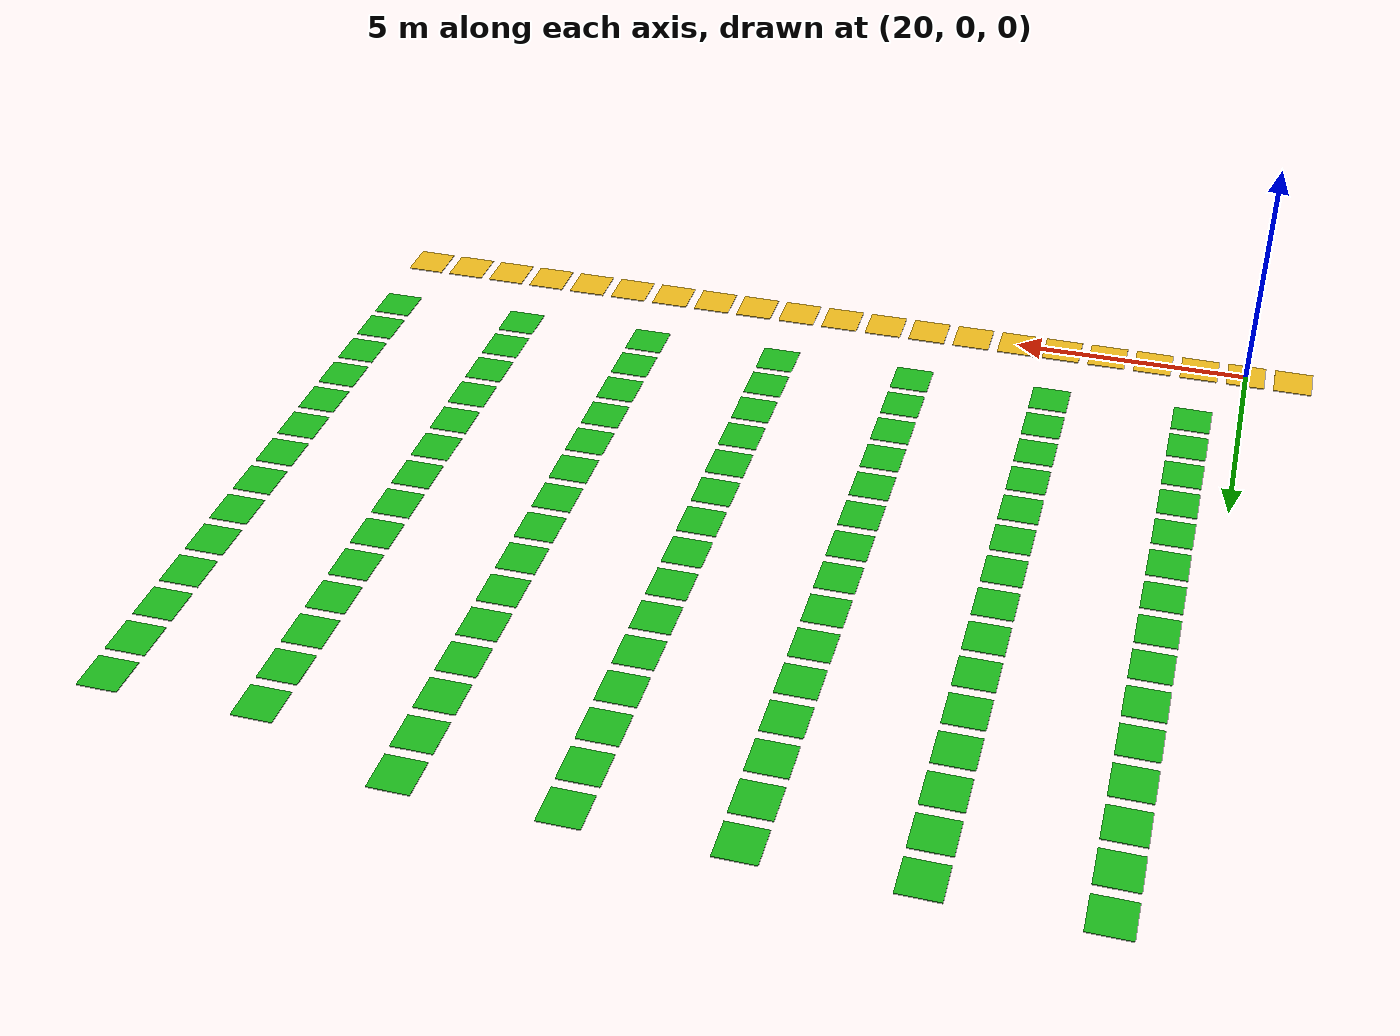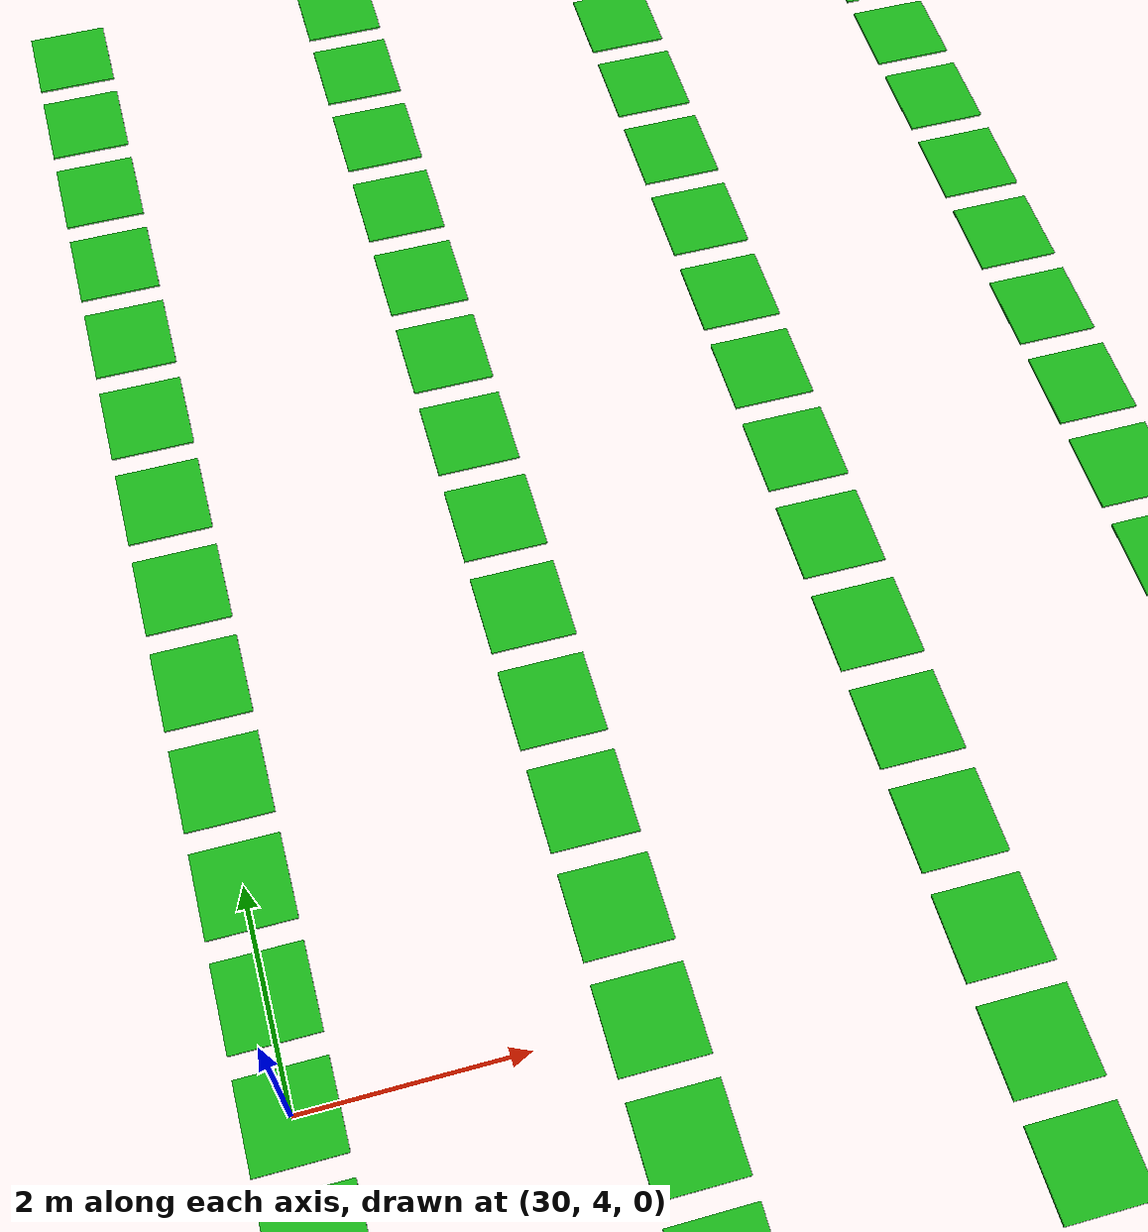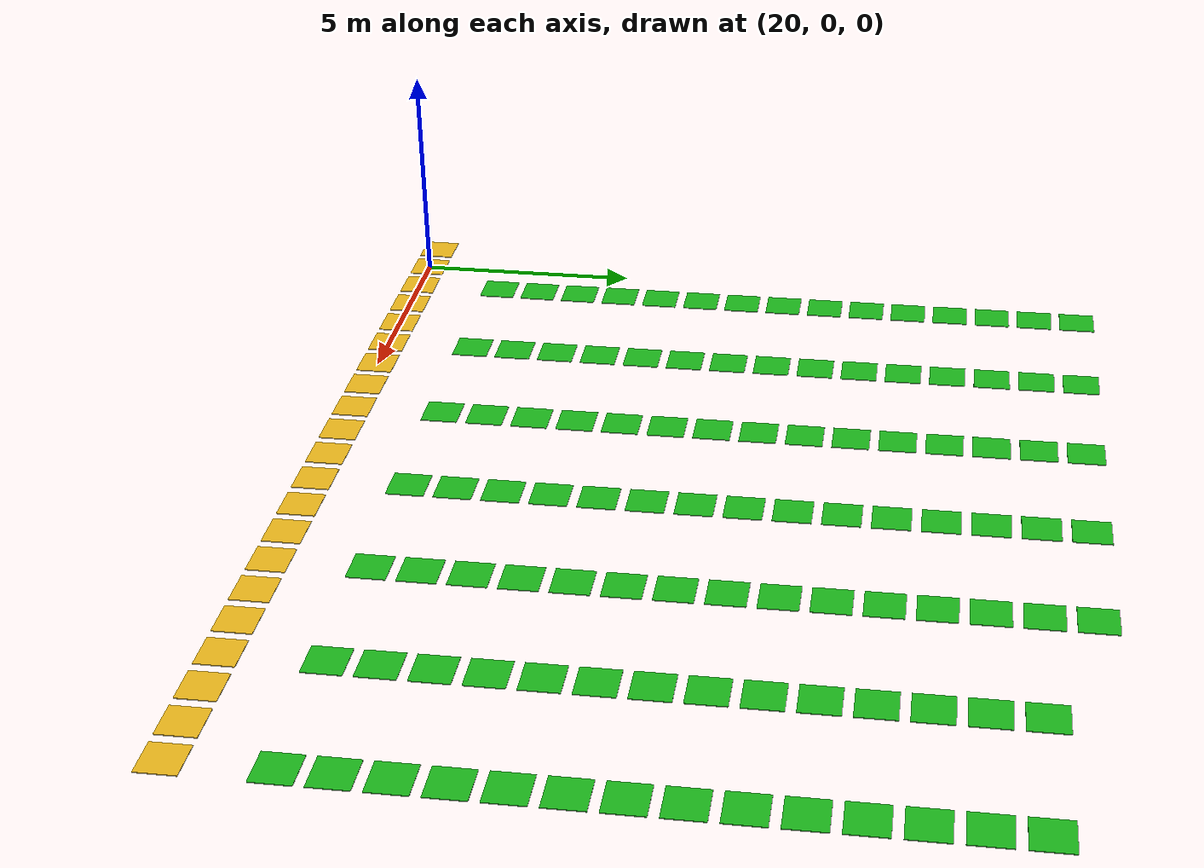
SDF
<sdf version="1.10">
 <world name="my_map">
  <model name="shelf_1882">
   <static>true</static>
   <pose>21.0
        16.0
        0.02
        0 0 0</pose>
   <link name="link">
    <visual name="visual">
     <geometry><box><size>0.8
                0.8
                0.02</size></box></geometry>
     <material><ambient>0.10 0.70 0.10 1</ambient><diffuse>0.10 0.70 0.10 1</diffuse></material>
    </visual>
   </link>
  </model>
  <model name="shelf_1883">
   <static>true</static>
   <pose>24.0
        16.0
        0.02
        0 0 0</pose>
   <link name="link">
    <visual name="visual">
     <geometry><box><size>0.8
                0.8
                0.02</size></box></geometry>
     <material><ambient>0.10 0.70 0.10 1</ambient><diffuse>0.10 0.70 0.10 1</diffuse></material>
    </visual>
   </link>
  </model>
  <model name="shelf_1884">
   <static>true</static>
   <pose>27.0
        16.0
        0.02
        0 0 0</pose>
   <link name="link">
    <visual name="visual">
     <geometry><box><size>0.8
                0.8
                0.02</size></box></geometry>
     <material><ambient>0.10 0.70 0.10 1</ambient><diffuse>0.10 0.70 0.10 1</diffuse></material>
    </visual>
   </link>
  </model>
  <model name="shelf_1885">
   <static>true</static>
   <pose>30.0
        16.0
        0.02
        0 0 0</pose>
   <link name="link">
    <visual name="visual">
     <geometry><box><size>0.8
                0.8
                0.02</size></box></geometry>
     <material><ambient>0.10 0.70 0.10 1</ambient><diffuse>0.10 0.70 0.10 1</diffuse></material>
    </visual>
   </link>
  </model>
  <model name="shelf_1886">
   <static>true</static>
   <pose>33.0
        16.0
        0.02
        0 0 0</pose>
   <link name="link">
    <visual name="visual">
     <geometry><box><size>0.8
                0.8
                0.02</size></box></geometry>
     <material><ambient>0.10 0.70 0.10 1</ambient><diffuse>0.10 0.70 0.10 1</diffuse></material>
    </visual>
   </link>
  </model>
  <model name="shelf_1907">
   <static>true</static>
   <pose>21.0
        15.0
        0.02
        0 0 0</pose>
   <link name="link">
    <visual name="visual">
     <geometry><box><size>0.8
                0.8
                0.02</size></box></geometry>
     <material><ambient>0.10 0.70 0.10 1</ambient><diffuse>0.10 0.70 0.10 1</diffuse></material>
    </visual>
   </link>
  </model>
  <model name="shelf_1908">
   <static>true</static>
   <pose>24.0
        15.0
        0.02
        0 0 0</pose>
   <link name="link">
    <visual name="visual">
     <geometry><box><size>0.8
                0.8
                0.02</size></box></geometry>
     <material><ambient>0.10 0.70 0.10 1</ambient><diffuse>0.10 0.70 0.10 1</diffuse></material>
    </visual>
   </link>
  </model>
  <model name="shelf_1909">
   <static>true</static>
   <pose>27.0
        15.0
        0.02
        0 0 0</pose>
   <link name="link">
    <visual name="visual">
     <geometry><box><size>0.8
                0.8
                0.02</size></box></geometry>
     <material><ambient>0.10 0.70 0.10 1</ambient><diffuse>0.10 0.70 0.10 1</diffuse></material>
    </visual>
   </link>
  </model>
  <model name="shelf_1910">
   <static>true</static>
   <pose>30.0
        15.0
        0.02
        0 0 0</pose>
   <link name="link">
    <visual name="visual">
     <geometry><box><size>0.8
                0.8
                0.02</size></box></geometry>
     <material><ambient>0.10 0.70 0.10 1</ambient><diffuse>0.10 0.70 0.10 1</diffuse></material>
    </visual>
   </link>
  </model>
  <model name="shelf_1911">
   <static>true</static>
   <pose>33.0
        15.0
        0.02
        0 0 0</pose>
   <link name="link">
    <visual name="visual">
     <geometry><box><size>0.8
                0.8
                0.02</size></box></geometry>
     <material><ambient>0.10 0.70 0.10 1</ambient><diffuse>0.10 0.70 0.10 1</diffuse></material>
    </visual>
   </link>
  </model>
  <model name="shelf_1912">
   <static>true</static>
   <pose>36.0
        15.0
        0.02
        0 0 0</pose>
   <link name="link">
    <visual name="visual">
     <geometry><box><size>0.8
                0.8
                0.02</size></box></geometry>
     <material><ambient>0.10 0.70 0.10 1</ambient><diffuse>0.10 0.70 0.10 1</diffuse></material>
    </visual>
   </link>
  </model>
  <model name="shelf_1913">
   <static>true</static>
   <pose>39.0
        15.0
        0.02
        0 0 0</pose>
   <link name="link">
    <visual name="visual">
     <geometry><box><size>0.8
                0.8
                0.02</size></box></geometry>
     <material><ambient>0.10 0.70 0.10 1</ambient><diffuse>0.10 0.70 0.10 1</diffuse></material>
    </visual>
   </link>
  </model>
  <model name="shelf_1932">
   <static>true</static>
   <pose>21.0
        14.0
        0.02
        0 0 0</pose>
   <link name="link">
    <visual name="visual">
     <geometry><box><size>0.8
                0.8
                0.02</size></box></geometry>
     <material><ambient>0.10 0.70 0.10 1</ambient><diffuse>0.10 0.70 0.10 1</diffuse></material>
    </visual>
   </link>
  </model>
  <model name="shelf_1933">
   <static>true</static>
   <pose>24.0
        14.0
        0.02
        0 0 0</pose>
   <link name="link">
    <visual name="visual">
     <geometry><box><size>0.8
                0.8
                0.02</size></box></geometry>
     <material><ambient>0.10 0.70 0.10 1</ambient><diffuse>0.10 0.70 0.10 1</diffuse></material>
    </visual>
   </link>
  </model>
  <model name="shelf_1934">
   <static>true</static>
   <pose>27.0
        14.0
        0.02
        0 0 0</pose>
   <link name="link">
    <visual name="visual">
     <geometry><box><size>0.8
                0.8
                0.02</size></box></geometry>
     <material><ambient>0.10 0.70 0.10 1</ambient><diffuse>0.10 0.70 0.10 1</diffuse></material>
    </visual>
   </link>
  </model>
  <model name="shelf_1935">
   <static>true</static>
   <pose>30.0
        14.0
        0.02
        0 0 0</pose>
   <link name="link">
    <visual name="visual">
     <geometry><box><size>0.8
                0.8
                0.02</size></box></geometry>
     <material><ambient>0.10 0.70 0.10 1</ambient><diffuse>0.10 0.70 0.10 1</diffuse></material>
    </visual>
   </link>
  </model>
  <model name="shelf_1936">
   <static>true</static>
   <pose>33.0
        14.0
        0.02
        0 0 0</pose>
   <link name="link">
    <visual name="visual">
     <geometry><box><size>0.8
                0.8
                0.02</size></box></geometry>
     <material><ambient>0.10 0.70 0.10 1</ambient><diffuse>0.10 0.70 0.10 1</diffuse></material>
    </visual>
   </link>
  </model>
  <model name="shelf_1937">
   <static>true</static>
   <pose>36.0
        14.0
        0.02
        0 0 0</pose>
   <link name="link">
    <visual name="visual">
     <geometry><box><size>0.8
                0.8
                0.02</size></box></geometry>
     <material><ambient>0.10 0.70 0.10 1</ambient><diffuse>0.10 0.70 0.10 1</diffuse></material>
    </visual>
   </link>
  </model>
  <model name="shelf_1938">
   <static>true</static>
   <pose>39.0
        14.0
        0.02
        0 0 0</pose>
   <link name="link">
    <visual name="visual">
     <geometry><box><size>0.8
                0.8
                0.02</size></box></geometry>
     <material><ambient>0.10 0.70 0.10 1</ambient><diffuse>0.10 0.70 0.10 1</diffuse></material>
    </visual>
   </link>
  </model>
  <model name="shelf_1957">
   <static>true</static>
   <pose>21.0
        13.0
        0.02
        0 0 0</pose>
   <link name="link">
    <visual name="visual">
     <geometry><box><size>0.8
                0.8
                0.02</size></box></geometry>
     <material><ambient>0.10 0.70 0.10 1</ambient><diffuse>0.10 0.70 0.10 1</diffuse></material>
    </visual>
   </link>
  </model>
  <model name="shelf_1958">
   <static>true</static>
   <pose>24.0
        13.0
        0.02
        0 0 0</pose>
   <link name="link">
    <visual name="visual">
     <geometry><box><size>0.8
                0.8
                0.02</size></box></geometry>
     <material><ambient>0.10 0.70 0.10 1</ambient><diffuse>0.10 0.70 0.10 1</diffuse></material>
    </visual>
   </link>
  </model>
  <model name="shelf_1959">
   <static>true</static>
   <pose>27.0
        13.0
        0.02
        0 0 0</pose>
   <link name="link">
    <visual name="visual">
     <geometry><box><size>0.8
                0.8
                0.02</size></box></geometry>
     <material><ambient>0.10 0.70 0.10 1</ambient><diffuse>0.10 0.70 0.10 1</diffuse></material>
    </visual>
   </link>
  </model>
  <model name="shelf_1960">
   <static>true</static>
   <pose>30.0
        13.0
        0.02
        0 0 0</pose>
   <link name="link">
    <visual name="visual">
     <geometry><box><size>0.8
                0.8
                0.02</size></box></geometry>
     <material><ambient>0.10 0.70 0.10 1</ambient><diffuse>0.10 0.70 0.10 1</diffuse></material>
    </visual>
   </link>
  </model>
  <model name="shelf_1961">
   <static>true</static>
   <pose>33.0
        13.0
        0.02
        0 0 0</pose>
   <link name="link">
    <visual name="visual">
     <geometry><box><size>0.8
                0.8
                0.02</size></box></geometry>
     <material><ambient>0.10 0.70 0.10 1</ambient><diffuse>0.10 0.70 0.10 1</diffuse></material>
    </visual>
   </link>
  </model>
  <model name="shelf_1962">
   <static>true</static>
   <pose>36.0
        13.0
        0.02
        0 0 0</pose>
   <link name="link">
    <visual name="visual">
     <geometry><box><size>0.8
                0.8
                0.02</size></box></geometry>
     <material><ambient>0.10 0.70 0.10 1</ambient><diffuse>0.10 0.70 0.10 1</diffuse></material>
    </visual>
   </link>
  </model>
  <model name="shelf_1963">
   <static>true</static>
   <pose>39.0
        13.0
        0.02
        0 0 0</pose>
   <link name="link">
    <visual name="visual">
     <geometry><box><size>0.8
                0.8
                0.02</size></box></geometry>
     <material><ambient>0.10 0.70 0.10 1</ambient><diffuse>0.10 0.70 0.10 1</diffuse></material>
    </visual>
   </link>
  </model>
  <model name="shelf_1982">
   <static>true</static>
   <pose>21.0
        12.0
        0.02
        0 0 0</pose>
   <link name="link">
    <visual name="visual">
     <geometry><box><size>0.8
                0.8
                0.02</size></box></geometry>
     <material><ambient>0.10 0.70 0.10 1</ambient><diffuse>0.10 0.70 0.10 1</diffuse></material>
    </visual>
   </link>
  </model>
  <model name="shelf_1983">
   <static>true</static>
   <pose>24.0
        12.0
        0.02
        0 0 0</pose>
   <link name="link">
    <visual name="visual">
     <geometry><box><size>0.8
                0.8
                0.02</size></box></geometry>
     <material><ambient>0.10 0.70 0.10 1</ambient><diffuse>0.10 0.70 0.10 1</diffuse></material>
    </visual>
   </link>
  </model>
  <model name="shelf_1984">
   <static>true</static>
   <pose>27.0
        12.0
        0.02
        0 0 0</pose>
   <link name="link">
    <visual name="visual">
     <geometry><box><size>0.8
                0.8
                0.02</size></box></geometry>
     <material><ambient>0.10 0.70 0.10 1</ambient><diffuse>0.10 0.70 0.10 1</diffuse></material>
    </visual>
   </link>
  </model>
  <model name="shelf_1985">
   <static>true</static>
   <pose>30.0
        12.0
        0.02
        0 0 0</pose>
   <link name="link">
    <visual name="visual">
     <geometry><box><size>0.8
                0.8
                0.02</size></box></geometry>
     <material><ambient>0.10 0.70 0.10 1</ambient><diffuse>0.10 0.70 0.10 1</diffuse></material>
    </visual>
   </link>
  </model>
  <model name="shelf_1986">
   <static>true</static>
   <pose>33.0
        12.0
        0.02
        0 0 0</pose>
   <link name="link">
    <visual name="visual">
     <geometry><box><size>0.8
                0.8
                0.02</size></box></geometry>
     <material><ambient>0.10 0.70 0.10 1</ambient><diffuse>0.10 0.70 0.10 1</diffuse></material>
    </visual>
   </link>
  </model>
  <model name="shelf_1987">
   <static>true</static>
   <pose>36.0
        12.0
        0.02
        0 0 0</pose>
   <link name="link">
    <visual name="visual">
     <geometry><box><size>0.8
                0.8
                0.02</size></box></geometry>
     <material><ambient>0.10 0.70 0.10 1</ambient><diffuse>0.10 0.70 0.10 1</diffuse></material>
    </visual>
   </link>
  </model>
  <model name="shelf_1988">
   <static>true</static>
   <pose>39.0
        12.0
        0.02
        0 0 0</pose>
   <link name="link">
    <visual name="visual">
     <geometry><box><size>0.8
                0.8
                0.02</size></box></geometry>
     <material><ambient>0.10 0.70 0.10 1</ambient><diffuse>0.10 0.70 0.10 1</diffuse></material>
    </visual>
   </link>
  </model>
  <model name="shelf_2007">
   <static>true</static>
   <pose>21.0
        11.0
        0.02
        0 0 0</pose>
   <link name="link">
    <visual name="visual">
     <geometry><box><size>0.8
                0.8
                0.02</size></box></geometry>
     <material><ambient>0.10 0.70 0.10 1</ambient><diffuse>0.10 0.70 0.10 1</diffuse></material>
    </visual>
   </link>
  </model>
  <model name="shelf_2008">
   <static>true</static>
   <pose>24.0
        11.0
        0.02
        0 0 0</pose>
   <link name="link">
    <visual name="visual">
     <geometry><box><size>0.8
                0.8
                0.02</size></box></geometry>
     <material><ambient>0.10 0.70 0.10 1</ambient><diffuse>0.10 0.70 0.10 1</diffuse></material>
    </visual>
   </link>
  </model>
  <model name="shelf_2009">
   <static>true</static>
   <pose>27.0
        11.0
        0.02
        0 0 0</pose>
   <link name="link">
    <visual name="visual">
     <geometry><box><size>0.8
                0.8
                0.02</size></box></geometry>
     <material><ambient>0.10 0.70 0.10 1</ambient><diffuse>0.10 0.70 0.10 1</diffuse></material>
    </visual>
   </link>
  </model>
  <model name="shelf_2010">
   <static>true</static>
   <pose>30.0
        11.0
        0.02
        0 0 0</pose>
   <link name="link">
    <visual name="visual">
     <geometry><box><size>0.8
                0.8
                0.02</size></box></geometry>
     <material><ambient>0.10 0.70 0.10 1</ambient><diffuse>0.10 0.70 0.10 1</diffuse></material>
    </visual>
   </link>
  </model>
  <model name="shelf_2011">
   <static>true</static>
   <pose>33.0
        11.0
        0.02
        0 0 0</pose>
   <link name="link">
    <visual name="visual">
     <geometry><box><size>0.8
                0.8
                0.02</size></box></geometry>
     <material><ambient>0.10 0.70 0.10 1</ambient><diffuse>0.10 0.70 0.10 1</diffuse></material>
    </visual>
   </link>
  </model>
  <model name="shelf_2012">
   <static>true</static>
   <pose>36.0
        11.0
        0.02
        0 0 0</pose>
   <link name="link">
    <visual name="visual">
     <geometry><box><size>0.8
                0.8
                0.02</size></box></geometry>
     <material><ambient>0.10 0.70 0.10 1</ambient><diffuse>0.10 0.70 0.10 1</diffuse></material>
    </visual>
   </link>
  </model>
  <model name="shelf_2013">
   <static>true</static>
   <pose>39.0
        11.0
        0.02
        0 0 0</pose>
   <link name="link">
    <visual name="visual">
     <geometry><box><size>0.8
                0.8
                0.02</size></box></geometry>
     <material><ambient>0.10 0.70 0.10 1</ambient><diffuse>0.10 0.70 0.10 1</diffuse></material>
    </visual>
   </link>
  </model>
  <model name="shelf_2032">
   <static>true</static>
   <pose>21.0
        10.0
        0.02
        0 0 0</pose>
   <link name="link">
    <visual name="visual">
     <geometry><box><size>0.8
                0.8
                0.02</size></box></geometry>
     <material><ambient>0.10 0.70 0.10 1</ambient><diffuse>0.10 0.70 0.10 1</diffuse></material>
    </visual>
   </link>
  </model>
  <model name="shelf_2033">
   <static>true</static>
   <pose>24.0
        10.0
        0.02
        0 0 0</pose>
   <link name="link">
    <visual name="visual">
     <geometry><box><size>0.8
                0.8
                0.02</size></box></geometry>
     <material><ambient>0.10 0.70 0.10 1</ambient><diffuse>0.10 0.70 0.10 1</diffuse></material>
    </visual>
   </link>
  </model>
  <model name="shelf_2034">
   <static>true</static>
   <pose>27.0
        10.0
        0.02
        0 0 0</pose>
   <link name="link">
    <visual name="visual">
     <geometry><box><size>0.8
                0.8
                0.02</size></box></geometry>
     <material><ambient>0.10 0.70 0.10 1</ambient><diffuse>0.10 0.70 0.10 1</diffuse></material>
    </visual>
   </link>
  </model>
  <model name="shelf_2035">
   <static>true</static>
   <pose>30.0
        10.0
        0.02
        0 0 0</pose>
   <link name="link">
    <visual name="visual">
     <geometry><box><size>0.8
                0.8
                0.02</size></box></geometry>
     <material><ambient>0.10 0.70 0.10 1</ambient><diffuse>0.10 0.70 0.10 1</diffuse></material>
    </visual>
   </link>
  </model>
  <model name="shelf_2036">
   <static>true</static>
   <pose>33.0
        10.0
        0.02
        0 0 0</pose>
   <link name="link">
    <visual name="visual">
     <geometry><box><size>0.8
                0.8
                0.02</size></box></geometry>
     <material><ambient>0.10 0.70 0.10 1</ambient><diffuse>0.10 0.70 0.10 1</diffuse></material>
    </visual>
   </link>
  </model>
  <model name="shelf_2037">
   <static>true</static>
   <pose>36.0
        10.0
        0.02
        0 0 0</pose>
   <link name="link">
    <visual name="visual">
     <geometry><box><size>0.8
                0.8
                0.02</size></box></geometry>
     <material><ambient>0.10 0.70 0.10 1</ambient><diffuse>0.10 0.70 0.10 1</diffuse></material>
    </visual>
   </link>
  </model>
  <model name="shelf_2038">
   <static>true</static>
   <pose>39.0
        10.0
        0.02
        0 0 0</pose>
   <link name="link">
    <visual name="visual">
     <geometry><box><size>0.8
                0.8
                0.02</size></box></geometry>
     <material><ambient>0.10 0.70 0.10 1</ambient><diffuse>0.10 0.70 0.10 1</diffuse></material>
    </visual>
   </link>
  </model>
  <model name="shelf_2057">
   <static>true</static>
   <pose>21.0
        9.0
        0.02
        0 0 0</pose>
   <link name="link">
    <visual name="visual">
     <geometry><box><size>0.8
                0.8
                0.02</size></box></geometry>
     <material><ambient>0.10 0.70 0.10 1</ambient><diffuse>0.10 0.70 0.10 1</diffuse></material>
    </visual>
   </link>
  </model>
  <model name="shelf_2058">
   <static>true</static>
   <pose>24.0
        9.0
        0.02
        0 0 0</pose>
   <link name="link">
    <visual name="visual">
     <geometry><box><size>0.8
                0.8
                0.02</size></box></geometry>
     <material><ambient>0.10 0.70 0.10 1</ambient><diffuse>0.10 0.70 0.10 1</diffuse></material>
    </visual>
   </link>
  </model>
  <model name="shelf_2059">
   <static>true</static>
   <pose>27.0
        9.0
        0.02
        0 0 0</pose>
   <link name="link">
    <visual name="visual">
     <geometry><box><size>0.8
                0.8
                0.02</size></box></geometry>
     <material><ambient>0.10 0.70 0.10 1</ambient><diffuse>0.10 0.70 0.10 1</diffuse></material>
    </visual>
   </link>
  </model>
  <model name="shelf_2060">
   <static>true</static>
   <pose>30.0
        9.0
        0.02
        0 0 0</pose>
   <link name="link">
    <visual name="visual">
     <geometry><box><size>0.8
                0.8
                0.02</size></box></geometry>
     <material><ambient>0.10 0.70 0.10 1</ambient><diffuse>0.10 0.70 0.10 1</diffuse></material>
    </visual>
   </link>
  </model>
  <model name="shelf_2061">
   <static>true</static>
   <pose>33.0
        9.0
        0.02
        0 0 0</pose>
   <link name="link">
    <visual name="visual">
     <geometry><box><size>0.8
                0.8
                0.02</size></box></geometry>
     <material><ambient>0.10 0.70 0.10 1</ambient><diffuse>0.10 0.70 0.10 1</diffuse></material>
    </visual>
   </link>
  </model>
  <model name="shelf_2062">
   <static>true</static>
   <pose>36.0
        9.0
        0.02
        0 0 0</pose>
   <link name="link">
    <visual name="visual">
     <geometry><box><size>0.8
                0.8
                0.02</size></box></geometry>
     <material><ambient>0.10 0.70 0.10 1</ambient><diffuse>0.10 0.70 0.10 1</diffuse></material>
    </visual>
   </link>
  </model>
  <model name="shelf_2063">
   <static>true</static>
   <pose>39.0
        9.0
        0.02
        0 0 0</pose>
   <link name="link">
    <visual name="visual">
     <geometry><box><size>0.8
                0.8
                0.02</size></box></geometry>
     <material><ambient>0.10 0.70 0.10 1</ambient><diffuse>0.10 0.70 0.10 1</diffuse></material>
    </visual>
   </link>
  </model>
  <model name="shelf_2082">
   <static>true</static>
   <pose>21.0
        8.0
        0.02
        0 0 0</pose>
   <link name="link">
    <visual name="visual">
     <geometry><box><size>0.8
                0.8
                0.02</size></box></geometry>
     <material><ambient>0.10 0.70 0.10 1</ambient><diffuse>0.10 0.70 0.10 1</diffuse></material>
    </visual>
   </link>
  </model>
  <model name="shelf_2083">
   <static>true</static>
   <pose>24.0
        8.0
        0.02
        0 0 0</pose>
   <link name="link">
    <visual name="visual">
     <geometry><box><size>0.8
                0.8
                0.02</size></box></geometry>
     <material><ambient>0.10 0.70 0.10 1</ambient><diffuse>0.10 0.70 0.10 1</diffuse></material>
    </visual>
   </link>
  </model>
  <model name="shelf_2084">
   <static>true</static>
   <pose>27.0
        8.0
        0.02
        0 0 0</pose>
   <link name="link">
    <visual name="visual">
     <geometry><box><size>0.8
                0.8
                0.02</size></box></geometry>
     <material><ambient>0.10 0.70 0.10 1</ambient><diffuse>0.10 0.70 0.10 1</diffuse></material>
    </visual>
   </link>
  </model>
  <model name="shelf_2085">
   <static>true</static>
   <pose>30.0
        8.0
        0.02
        0 0 0</pose>
   <link name="link">
    <visual name="visual">
     <geometry><box><size>0.8
                0.8
                0.02</size></box></geometry>
     <material><ambient>0.10 0.70 0.10 1</ambient><diffuse>0.10 0.70 0.10 1</diffuse></material>
    </visual>
   </link>
  </model>
  <model name="shelf_2086">
   <static>true</static>
   <pose>33.0
        8.0
        0.02
        0 0 0</pose>
   <link name="link">
    <visual name="visual">
     <geometry><box><size>0.8
                0.8
                0.02</size></box></geometry>
     <material><ambient>0.10 0.70 0.10 1</ambient><diffuse>0.10 0.70 0.10 1</diffuse></material>
    </visual>
   </link>
  </model>
  <model name="shelf_2087">
   <static>true</static>
   <pose>36.0
        8.0
        0.02
        0 0 0</pose>
   <link name="link">
    <visual name="visual">
     <geometry><box><size>0.8
                0.8
                0.02</size></box></geometry>
     <material><ambient>0.10 0.70 0.10 1</ambient><diffuse>0.10 0.70 0.10 1</diffuse></material>
    </visual>
   </link>
  </model>
  <model name="shelf_2088">
   <static>true</static>
   <pose>39.0
        8.0
        0.02
        0 0 0</pose>
   <link name="link">
    <visual name="visual">
     <geometry><box><size>0.8
                0.8
                0.02</size></box></geometry>
     <material><ambient>0.10 0.70 0.10 1</ambient><diffuse>0.10 0.70 0.10 1</diffuse></material>
    </visual>
   </link>
  </model>
  <model name="shelf_2107">
   <static>true</static>
   <pose>21.0
        7.0
        0.02
        0 0 0</pose>
   <link name="link">
    <visual name="visual">
     <geometry><box><size>0.8
                0.8
                0.02</size></box></geometry>
     <material><ambient>0.10 0.70 0.10 1</ambient><diffuse>0.10 0.70 0.10 1</diffuse></material>
    </visual>
   </link>
  </model>
  <model name="shelf_2108">
   <static>true</static>
   <pose>24.0
        7.0
        0.02
        0 0 0</pose>
   <link name="link">
    <visual name="visual">
     <geometry><box><size>0.8
                0.8
                0.02</size></box></geometry>
     <material><ambient>0.10 0.70 0.10 1</ambient><diffuse>0.10 0.70 0.10 1</diffuse></material>
    </visual>
   </link>
  </model>
  <model name="shelf_2109">
   <static>true</static>
   <pose>27.0
        7.0
        0.02
        0 0 0</pose>
   <link name="link">
    <visual name="visual">
     <geometry><box><size>0.8
                0.8
                0.02</size></box></geometry>
     <material><ambient>0.10 0.70 0.10 1</ambient><diffuse>0.10 0.70 0.10 1</diffuse></material>
    </visual>
   </link>
  </model>
  <model name="shelf_2110">
   <static>true</static>
   <pose>30.0
        7.0
        0.02
        0 0 0</pose>
   <link name="link">
    <visual name="visual">
     <geometry><box><size>0.8
                0.8
                0.02</size></box></geometry>
     <material><ambient>0.10 0.70 0.10 1</ambient><diffuse>0.10 0.70 0.10 1</diffuse></material>
    </visual>
   </link>
  </model>
  <model name="shelf_2111">
   <static>true</static>
   <pose>33.0
        7.0
        0.02
        0 0 0</pose>
   <link name="link">
    <visual name="visual">
     <geometry><box><size>0.8
                0.8
                0.02</size></box></geometry>
     <material><ambient>0.10 0.70 0.10 1</ambient><diffuse>0.10 0.70 0.10 1</diffuse></material>
    </visual>
   </link>
  </model>
  <model name="shelf_2112">
   <static>true</static>
   <pose>36.0
        7.0
        0.02
        0 0 0</pose>
   <link name="link">
    <visual name="visual">
     <geometry><box><size>0.8
                0.8
                0.02</size></box></geometry>
     <material><ambient>0.10 0.70 0.10 1</ambient><diffuse>0.10 0.70 0.10 1</diffuse></material>
    </visual>
   </link>
  </model>
  <model name="shelf_2113">
   <static>true</static>
   <pose>39.0
        7.0
        0.02
        0 0 0</pose>
   <link name="link">
    <visual name="visual">
     <geometry><box><size>0.8
                0.8
                0.02</size></box></geometry>
     <material><ambient>0.10 0.70 0.10 1</ambient><diffuse>0.10 0.70 0.10 1</diffuse></material>
    </visual>
   </link>
  </model>
  <model name="shelf_2132">
   <static>true</static>
   <pose>21.0
        6.0
        0.02
        0 0 0</pose>
   <link name="link">
    <visual name="visual">
     <geometry><box><size>0.8
                0.8
                0.02</size></box></geometry>
     <material><ambient>0.10 0.70 0.10 1</ambient><diffuse>0.10 0.70 0.10 1</diffuse></material>
    </visual>
   </link>
  </model>
  <model name="shelf_2133">
   <static>true</static>
   <pose>24.0
        6.0
        0.02
        0 0 0</pose>
   <link name="link">
    <visual name="visual">
     <geometry><box><size>0.8
                0.8
                0.02</size></box></geometry>
     <material><ambient>0.10 0.70 0.10 1</ambient><diffuse>0.10 0.70 0.10 1</diffuse></material>
    </visual>
   </link>
  </model>
  <model name="shelf_2134">
   <static>true</static>
   <pose>27.0
        6.0
        0.02
        0 0 0</pose>
   <link name="link">
    <visual name="visual">
     <geometry><box><size>0.8
                0.8
                0.02</size></box></geometry>
     <material><ambient>0.10 0.70 0.10 1</ambient><diffuse>0.10 0.70 0.10 1</diffuse></material>
    </visual>
   </link>
  </model>
  <model name="shelf_2135">
   <static>true</static>
   <pose>30.0
        6.0
        0.02
        0 0 0</pose>
   <link name="link">
    <visual name="visual">
     <geometry><box><size>0.8
                0.8
                0.02</size></box></geometry>
     <material><ambient>0.10 0.70 0.10 1</ambient><diffuse>0.10 0.70 0.10 1</diffuse></material>
    </visual>
   </link>
  </model>
  <model name="shelf_2136">
   <static>true</static>
   <pose>33.0
        6.0
        0.02
        0 0 0</pose>
   <link name="link">
    <visual name="visual">
     <geometry><box><size>0.8
                0.8
                0.02</size></box></geometry>
     <material><ambient>0.10 0.70 0.10 1</ambient><diffuse>0.10 0.70 0.10 1</diffuse></material>
    </visual>
   </link>
  </model>
  <model name="shelf_2137">
   <static>true</static>
   <pose>36.0
        6.0
        0.02
        0 0 0</pose>
   <link name="link">
    <visual name="visual">
     <geometry><box><size>0.8
                0.8
                0.02</size></box></geometry>
     <material><ambient>0.10 0.70 0.10 1</ambient><diffuse>0.10 0.70 0.10 1</diffuse></material>
    </visual>
   </link>
  </model>
  <model name="shelf_2138">
   <static>true</static>
   <pose>39.0
        6.0
        0.02
        0 0 0</pose>
   <link name="link">
    <visual name="visual">
     <geometry><box><size>0.8
                0.8
                0.02</size></box></geometry>
     <material><ambient>0.10 0.70 0.10 1</ambient><diffuse>0.10 0.70 0.10 1</diffuse></material>
    </visual>
   </link>
  </model>
  <model name="shelf_2157">
   <static>true</static>
   <pose>21.0
        5.0
        0.02
        0 0 0</pose>
   <link name="link">
    <visual name="visual">
     <geometry><box><size>0.8
                0.8
                0.02</size></box></geometry>
     <material><ambient>0.10 0.70 0.10 1</ambient><diffuse>0.10 0.70 0.10 1</diffuse></material>
    </visual>
   </link>
  </model>
  <model name="shelf_2158">
   <static>true</static>
   <pose>24.0
        5.0
        0.02
        0 0 0</pose>
   <link name="link">
    <visual name="visual">
     <geometry><box><size>0.8
                0.8
                0.02</size></box></geometry>
     <material><ambient>0.10 0.70 0.10 1</ambient><diffuse>0.10 0.70 0.10 1</diffuse></material>
    </visual>
   </link>
  </model>
  <model name="shelf_2159">
   <static>true</static>
   <pose>27.0
        5.0
        0.02
        0 0 0</pose>
   <link name="link">
    <visual name="visual">
     <geometry><box><size>0.8
                0.8
                0.02</size></box></geometry>
     <material><ambient>0.10 0.70 0.10 1</ambient><diffuse>0.10 0.70 0.10 1</diffuse></material>
    </visual>
   </link>
  </model>
  <model name="shelf_2160">
   <static>true</static>
   <pose>30.0
        5.0
        0.02
        0 0 0</pose>
   <link name="link">
    <visual name="visual">
     <geometry><box><size>0.8
                0.8
                0.02</size></box></geometry>
     <material><ambient>0.10 0.70 0.10 1</ambient><diffuse>0.10 0.70 0.10 1</diffuse></material>
    </visual>
   </link>
  </model>
  <model name="shelf_2161">
   <static>true</static>
   <pose>33.0
        5.0
        0.02
        0 0 0</pose>
   <link name="link">
    <visual name="visual">
     <geometry><box><size>0.8
                0.8
                0.02</size></box></geometry>
     <material><ambient>0.10 0.70 0.10 1</ambient><diffuse>0.10 0.70 0.10 1</diffuse></material>
    </visual>
   </link>
  </model>
  <model name="shelf_2162">
   <static>true</static>
   <pose>36.0
        5.0
        0.02
        0 0 0</pose>
   <link name="link">
    <visual name="visual">
     <geometry><box><size>0.8
                0.8
                0.02</size></box></geometry>
     <material><ambient>0.10 0.70 0.10 1</ambient><diffuse>0.10 0.70 0.10 1</diffuse></material>
    </visual>
   </link>
  </model>
  <model name="shelf_2163">
   <static>true</static>
   <pose>39.0
        5.0
        0.02
        0 0 0</pose>
   <link name="link">
    <visual name="visual">
     <geometry><box><size>0.8
                0.8
                0.02</size></box></geometry>
     <material><ambient>0.10 0.70 0.10 1</ambient><diffuse>0.10 0.70 0.10 1</diffuse></material>
    </visual>
   </link>
  </model>
  <model name="shelf_2182">
   <static>true</static>
   <pose>21.0
        4.0
        0.02
        0 0 0</pose>
   <link name="link">
    <visual name="visual">
     <geometry><box><size>0.8
                0.8
                0.02</size></box></geometry>
     <material><ambient>0.10 0.70 0.10 1</ambient><diffuse>0.10 0.70 0.10 1</diffuse></material>
    </visual>
   </link>
  </model>
  <model name="shelf_2183">
   <static>true</static>
   <pose>24.0
        4.0
        0.02
        0 0 0</pose>
   <link name="link">
    <visual name="visual">
     <geometry><box><size>0.8
                0.8
                0.02</size></box></geometry>
     <material><ambient>0.10 0.70 0.10 1</ambient><diffuse>0.10 0.70 0.10 1</diffuse></material>
    </visual>
   </link>
  </model>
  <model name="shelf_2184">
   <static>true</static>
   <pose>27.0
        4.0
        0.02
        0 0 0</pose>
   <link name="link">
    <visual name="visual">
     <geometry><box><size>0.8
                0.8
                0.02</size></box></geometry>
     <material><ambient>0.10 0.70 0.10 1</ambient><diffuse>0.10 0.70 0.10 1</diffuse></material>
    </visual>
   </link>
  </model>
  <model name="shelf_2185">
   <static>true</static>
   <pose>30.0
        4.0
        0.02
        0 0 0</pose>
   <link name="link">
    <visual name="visual">
     <geometry><box><size>0.8
                0.8
                0.02</size></box></geometry>
     <material><ambient>0.10 0.70 0.10 1</ambient><diffuse>0.10 0.70 0.10 1</diffuse></material>
    </visual>
   </link>
  </model>
  <model name="shelf_2186">
   <static>true</static>
   <pose>33.0
        4.0
        0.02
        0 0 0</pose>
   <link name="link">
    <visual name="visual">
     <geometry><box><size>0.8
                0.8
                0.02</size></box></geometry>
     <material><ambient>0.10 0.70 0.10 1</ambient><diffuse>0.10 0.70 0.10 1</diffuse></material>
    </visual>
   </link>
  </model>
  <model name="shelf_2187">
   <static>true</static>
   <pose>36.0
        4.0
        0.02
        0 0 0</pose>
   <link name="link">
    <visual name="visual">
     <geometry><box><size>0.8
                0.8
                0.02</size></box></geometry>
     <material><ambient>0.10 0.70 0.10 1</ambient><diffuse>0.10 0.70 0.10 1</diffuse></material>
    </visual>
   </link>
  </model>
  <model name="shelf_2188">
   <static>true</static>
   <pose>39.0
        4.0
        0.02
        0 0 0</pose>
   <link name="link">
    <visual name="visual">
     <geometry><box><size>0.8
                0.8
                0.02</size></box></geometry>
     <material><ambient>0.10 0.70 0.10 1</ambient><diffuse>0.10 0.70 0.10 1</diffuse></material>
    </visual>
   </link>
  </model>
  <model name="shelf_2207">
   <static>true</static>
   <pose>21.0
        3.0
        0.02
        0 0 0</pose>
   <link name="link">
    <visual name="visual">
     <geometry><box><size>0.8
                0.8
                0.02</size></box></geometry>
     <material><ambient>0.10 0.70 0.10 1</ambient><diffuse>0.10 0.70 0.10 1</diffuse></material>
    </visual>
   </link>
  </model>
  <model name="shelf_2208">
   <static>true</static>
   <pose>24.0
        3.0
        0.02
        0 0 0</pose>
   <link name="link">
    <visual name="visual">
     <geometry><box><size>0.8
                0.8
                0.02</size></box></geometry>
     <material><ambient>0.10 0.70 0.10 1</ambient><diffuse>0.10 0.70 0.10 1</diffuse></material>
    </visual>
   </link>
  </model>
  <model name="shelf_2209">
   <static>true</static>
   <pose>27.0
        3.0
        0.02
        0 0 0</pose>
   <link name="link">
    <visual name="visual">
     <geometry><box><size>0.8
                0.8
                0.02</size></box></geometry>
     <material><ambient>0.10 0.70 0.10 1</ambient><diffuse>0.10 0.70 0.10 1</diffuse></material>
    </visual>
   </link>
  </model>
  <model name="shelf_2210">
   <static>true</static>
   <pose>30.0
        3.0
        0.02
        0 0 0</pose>
   <link name="link">
    <visual name="visual">
     <geometry><box><size>0.8
                0.8
                0.02</size></box></geometry>
     <material><ambient>0.10 0.70 0.10 1</ambient><diffuse>0.10 0.70 0.10 1</diffuse></material>
    </visual>
   </link>
  </model>
  <model name="shelf_2211">
   <static>true</static>
   <pose>33.0
        3.0
        0.02
        0 0 0</pose>
   <link name="link">
    <visual name="visual">
     <geometry><box><size>0.8
                0.8
                0.02</size></box></geometry>
     <material><ambient>0.10 0.70 0.10 1</ambient><diffuse>0.10 0.70 0.10 1</diffuse></material>
    </visual>
   </link>
  </model>
  <model name="shelf_2212">
   <static>true</static>
   <pose>36.0
        3.0
        0.02
        0 0 0</pose>
   <link name="link">
    <visual name="visual">
     <geometry><box><size>0.8
                0.8
                0.02</size></box></geometry>
     <material><ambient>0.10 0.70 0.10 1</ambient><diffuse>0.10 0.70 0.10 1</diffuse></material>
    </visual>
   </link>
  </model>
  <model name="shelf_2213">
   <static>true</static>
   <pose>39.0
        3.0
        0.02
        0 0 0</pose>
   <link name="link">
    <visual name="visual">
     <geometry><box><size>0.8
                0.8
                0.02</size></box></geometry>
     <material><ambient>0.10 0.70 0.10 1</ambient><diffuse>0.10 0.70 0.10 1</diffuse></material>
    </visual>
   </link>
  </model>
  <model name="shelf_2232">
   <static>true</static>
   <pose>21.0
        2.0
        0.02
        0 0 0</pose>
   <link name="link">
    <visual name="visual">
     <geometry><box><size>0.8
                0.8
                0.02</size></box></geometry>
     <material><ambient>0.10 0.70 0.10 1</ambient><diffuse>0.10 0.70 0.10 1</diffuse></material>
    </visual>
   </link>
  </model>
  <model name="shelf_2233">
   <static>true</static>
   <pose>24.0
        2.0
        0.02
        0 0 0</pose>
   <link name="link">
    <visual name="visual">
     <geometry><box><size>0.8
                0.8
                0.02</size></box></geometry>
     <material><ambient>0.10 0.70 0.10 1</ambient><diffuse>0.10 0.70 0.10 1</diffuse></material>
    </visual>
   </link>
  </model>
  <model name="shelf_2234">
   <static>true</static>
   <pose>27.0
        2.0
        0.02
        0 0 0</pose>
   <link name="link">
    <visual name="visual">
     <geometry><box><size>0.8
                0.8
                0.02</size></box></geometry>
     <material><ambient>0.10 0.70 0.10 1</ambient><diffuse>0.10 0.70 0.10 1</diffuse></material>
    </visual>
   </link>
  </model>
  <model name="shelf_2235">
   <static>true</static>
   <pose>30.0
        2.0
        0.02
        0 0 0</pose>
   <link name="link">
    <visual name="visual">
     <geometry><box><size>0.8
                0.8
                0.02</size></box></geometry>
     <material><ambient>0.10 0.70 0.10 1</ambient><diffuse>0.10 0.70 0.10 1</diffuse></material>
    </visual>
   </link>
  </model>
  <model name="shelf_2236">
   <static>true</static>
   <pose>33.0
        2.0
        0.02
        0 0 0</pose>
   <link name="link">
    <visual name="visual">
     <geometry><box><size>0.8
                0.8
                0.02</size></box></geometry>
     <material><ambient>0.10 0.70 0.10 1</ambient><diffuse>0.10 0.70 0.10 1</diffuse></material>
    </visual>
   </link>
  </model>
  <model name="shelf_2237">
   <static>true</static>
   <pose>36.0
        2.0
        0.02
        0 0 0</pose>
   <link name="link">
    <visual name="visual">
     <geometry><box><size>0.8
                0.8
                0.02</size></box></geometry>
     <material><ambient>0.10 0.70 0.10 1</ambient><diffuse>0.10 0.70 0.10 1</diffuse></material>
    </visual>
   </link>
  </model>
  <model name="shelf_2238">
   <static>true</static>
   <pose>39.0
        2.0
        0.02
        0 0 0</pose>
   <link name="link">
    <visual name="visual">
     <geometry><box><size>0.8
                0.8
                0.02</size></box></geometry>
     <material><ambient>0.10 0.70 0.10 1</ambient><diffuse>0.10 0.70 0.10 1</diffuse></material>
    </visual>
   </link>
  </model>
  <model name="dropoff_018">
   <static>true</static>
   <pose>19.0
        0.0
        0.02
        0 0 0</pose>
   <link name="link">
    <visual name="visual">
     <geometry><box><size>0.8
                0.8
                0.02</size></box></geometry>
     <material><ambient>0.90 0.70 0.10 1</ambient><diffuse>0.90 0.70 0.10 1</diffuse></material>
    </visual>
   </link>
  </model>
  <model name="dropoff_019">
   <static>true</static>
   <pose>20.0
        0.0
        0.02
        0 0 0</pose>
   <link name="link">
    <visual name="visual">
     <geometry><box><size>0.8
                0.8
                0.02</size></box></geometry>
     <material><ambient>0.90 0.70 0.10 1</ambient><diffuse>0.90 0.70 0.10 1</diffuse></material>
    </visual>
   </link>
  </model>
  <model name="dropoff_020">
   <static>true</static>
   <pose>21.0
        0.0
        0.02
        0 0 0</pose>
   <link name="link">
    <visual name="visual">
     <geometry><box><size>0.8
                0.8
                0.02</size></box></geometry>
     <material><ambient>0.90 0.70 0.10 1</ambient><diffuse>0.90 0.70 0.10 1</diffuse></material>
    </visual>
   </link>
  </model>
  <model name="dropoff_021">
   <static>true</static>
   <pose>22.0
        0.0
        0.02
        0 0 0</pose>
   <link name="link">
    <visual name="visual">
     <geometry><box><size>0.8
                0.8
                0.02</size></box></geometry>
     <material><ambient>0.90 0.70 0.10 1</ambient><diffuse>0.90 0.70 0.10 1</diffuse></material>
    </visual>
   </link>
  </model>
  <model name="dropoff_022">
   <static>true</static>
   <pose>23.0
        0.0
        0.02
        0 0 0</pose>
   <link name="link">
    <visual name="visual">
     <geometry><box><size>0.8
                0.8
                0.02</size></box></geometry>
     <material><ambient>0.90 0.70 0.10 1</ambient><diffuse>0.90 0.70 0.10 1</diffuse></material>
    </visual>
   </link>
  </model>
  <model name="dropoff_023">
   <static>true</static>
   <pose>24.0
        0.0
        0.02
        0 0 0</pose>
   <link name="link">
    <visual name="visual">
     <geometry><box><size>0.8
                0.8
                0.02</size></box></geometry>
     <material><ambient>0.90 0.70 0.10 1</ambient><diffuse>0.90 0.70 0.10 1</diffuse></material>
    </visual>
   </link>
  </model>
  <model name="dropoff_024">
   <static>true</static>
   <pose>25.0
        0.0
        0.02
        0 0 0</pose>
   <link name="link">
    <visual name="visual">
     <geometry><box><size>0.8
                0.8
                0.02</size></box></geometry>
     <material><ambient>0.90 0.70 0.10 1</ambient><diffuse>0.90 0.70 0.10 1</diffuse></material>
    </visual>
   </link>
  </model>
  <model name="dropoff_025">
   <static>true</static>
   <pose>26.0
        0.0
        0.02
        0 0 0</pose>
   <link name="link">
    <visual name="visual">
     <geometry><box><size>0.8
                0.8
                0.02</size></box></geometry>
     <material><ambient>0.90 0.70 0.10 1</ambient><diffuse>0.90 0.70 0.10 1</diffuse></material>
    </visual>
   </link>
  </model>
  <model name="dropoff_026">
   <static>true</static>
   <pose>27.0
        0.0
        0.02
        0 0 0</pose>
   <link name="link">
    <visual name="visual">
     <geometry><box><size>0.8
                0.8
                0.02</size></box></geometry>
     <material><ambient>0.90 0.70 0.10 1</ambient><diffuse>0.90 0.70 0.10 1</diffuse></material>
    </visual>
   </link>
  </model>
  <model name="dropoff_027">
   <static>true</static>
   <pose>28.0
        0.0
        0.02
        0 0 0</pose>
   <link name="link">
    <visual name="visual">
     <geometry><box><size>0.8
                0.8
                0.02</size></box></geometry>
     <material><ambient>0.90 0.70 0.10 1</ambient><diffuse>0.90 0.70 0.10 1</diffuse></material>
    </visual>
   </link>
  </model>
  <model name="dropoff_028">
   <static>true</static>
   <pose>29.0
        0.0
        0.02
        0 0 0</pose>
   <link name="link">
    <visual name="visual">
     <geometry><box><size>0.8
                0.8
                0.02</size></box></geometry>
     <material><ambient>0.90 0.70 0.10 1</ambient><diffuse>0.90 0.70 0.10 1</diffuse></material>
    </visual>
   </link>
  </model>
  <model name="dropoff_029">
   <static>true</static>
   <pose>30.0
        0.0
        0.02
        0 0 0</pose>
   <link name="link">
    <visual name="visual">
     <geometry><box><size>0.8
                0.8
                0.02</size></box></geometry>
     <material><ambient>0.90 0.70 0.10 1</ambient><diffuse>0.90 0.70 0.10 1</diffuse></material>
    </visual>
   </link>
  </model>
  <model name="dropoff_030">
   <static>true</static>
   <pose>31.0
        0.0
        0.02
        0 0 0</pose>
   <link name="link">
    <visual name="visual">
     <geometry><box><size>0.8
                0.8
                0.02</size></box></geometry>
     <material><ambient>0.90 0.70 0.10 1</ambient><diffuse>0.90 0.70 0.10 1</diffuse></material>
    </visual>
   </link>
  </model>
  <model name="dropoff_031">
   <static>true</static>
   <pose>32.0
        0.0
        0.02
        0 0 0</pose>
   <link name="link">
    <visual name="visual">
     <geometry><box><size>0.8
                0.8
                0.02</size></box></geometry>
     <material><ambient>0.90 0.70 0.10 1</ambient><diffuse>0.90 0.70 0.10 1</diffuse></material>
    </visual>
   </link>
  </model>
  <model name="dropoff_032">
   <static>true</static>
   <pose>33.0
        0.0
        0.02
        0 0 0</pose>
   <link name="link">
    <visual name="visual">
     <geometry><box><size>0.8
                0.8
                0.02</size></box></geometry>
     <material><ambient>0.90 0.70 0.10 1</ambient><diffuse>0.90 0.70 0.10 1</diffuse></material>
    </visual>
   </link>
  </model>
  <model name="dropoff_033">
   <static>true</static>
   <pose>34.0
        0.0
        0.02
        0 0 0</pose>
   <link name="link">
    <visual name="visual">
     <geometry><box><size>0.8
                0.8
                0.02</size></box></geometry>
     <material><ambient>0.90 0.70 0.10 1</ambient><diffuse>0.90 0.70 0.10 1</diffuse></material>
    </visual>
   </link>
  </model>
  <model name="dropoff_034">
   <static>true</static>
   <pose>35.0
        0.0
        0.02
        0 0 0</pose>
   <link name="link">
    <visual name="visual">
     <geometry><box><size>0.8
                0.8
                0.02</size></box></geometry>
     <material><ambient>0.90 0.70 0.10 1</ambient><diffuse>0.90 0.70 0.10 1</diffuse></material>
    </visual>
   </link>
  </model>
  <model name="dropoff_035">
   <static>true</static>
   <pose>36.0
        0.0
        0.02
        0 0 0</pose>
   <link name="link">
    <visual name="visual">
     <geometry><box><size>0.8
                0.8
                0.02</size></box></geometry>
     <material><ambient>0.90 0.70 0.10 1</ambient><diffuse>0.90 0.70 0.10 1</diffuse></material>
    </visual>
   </link>
  </model>
  <model name="dropoff_036">
   <static>true</static>
   <pose>37.0
        0.0
        0.02
        0 0 0</pose>
   <link name="link">
    <visual name="visual">
     <geometry><box><size>0.8
                0.8
                0.02</size></box></geometry>
     <material><ambient>0.90 0.70 0.10 1</ambient><diffuse>0.90 0.70 0.10 1</diffuse></material>
    </visual>
   </link>
  </model>
  <model name="dropoff_037">
   <static>true</static>
   <pose>38.0
        0.0
        0.02
        0 0 0</pose>
   <link name="link">
    <visual name="visual">
     <geometry><box><size>0.8
                0.8
                0.02</size></box></geometry>
     <material><ambient>0.90 0.70 0.10 1</ambient><diffuse>0.90 0.70 0.10 1</diffuse></material>
    </visual>
   </link>
  </model>
  <model name="dropoff_038">
   <static>true</static>
   <pose>39.0
        0.0
        0.02
        0 0 0</pose>
   <link name="link">
    <visual name="visual">
     <geometry><box><size>0.8
                0.8
                0.02</size></box></geometry>
     <material><ambient>0.90 0.70 0.10 1</ambient><diffuse>0.90 0.70 0.10 1</diffuse></material>
    </visual>
   </link>
  </model>
 </world>
</sdf>
